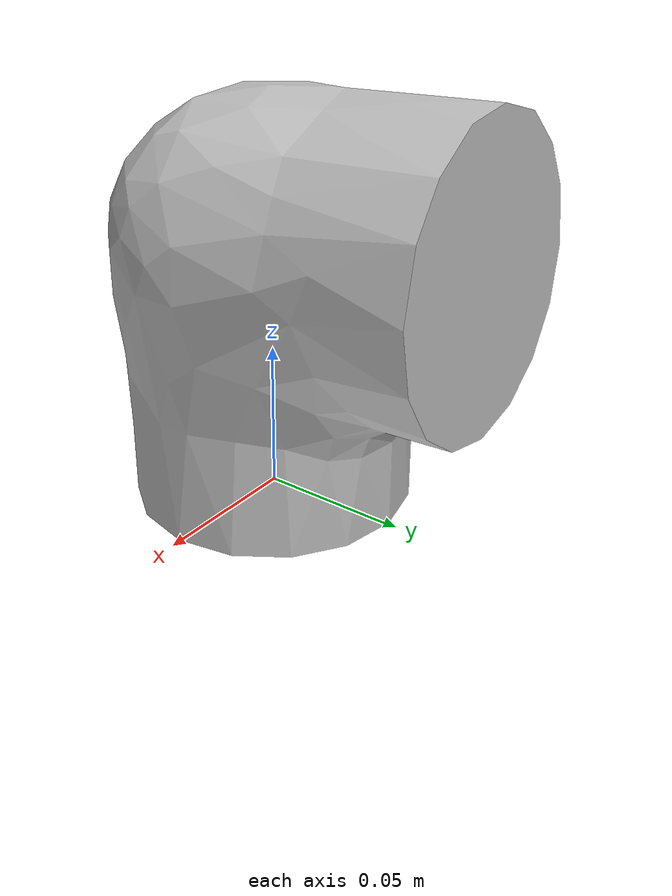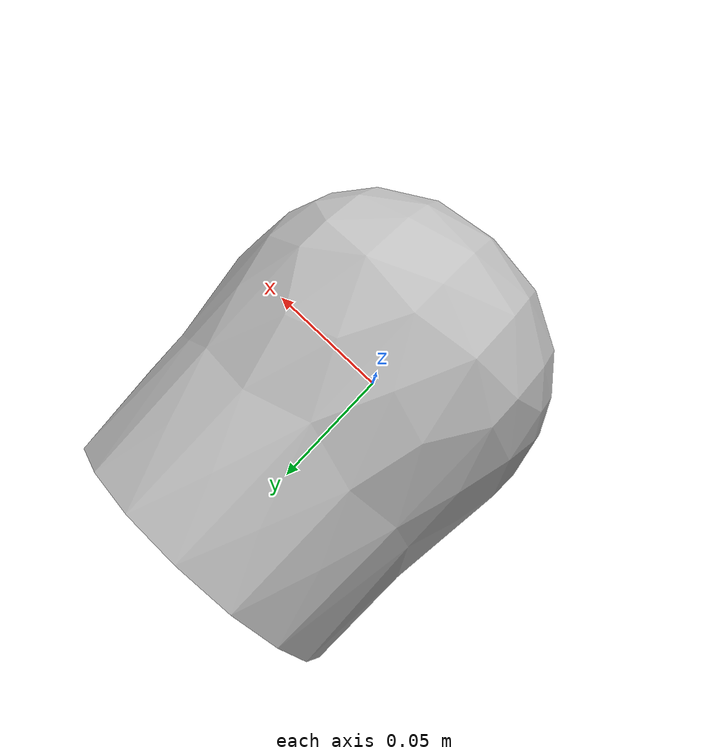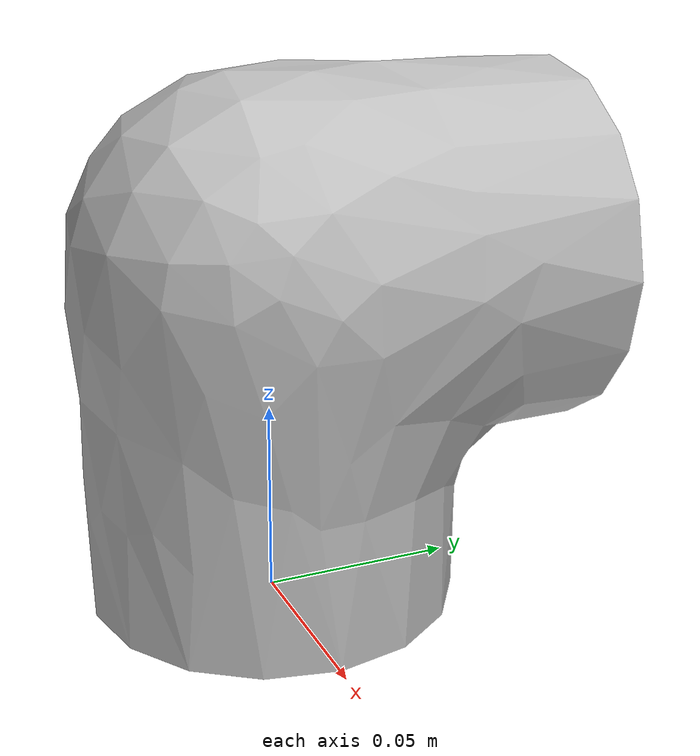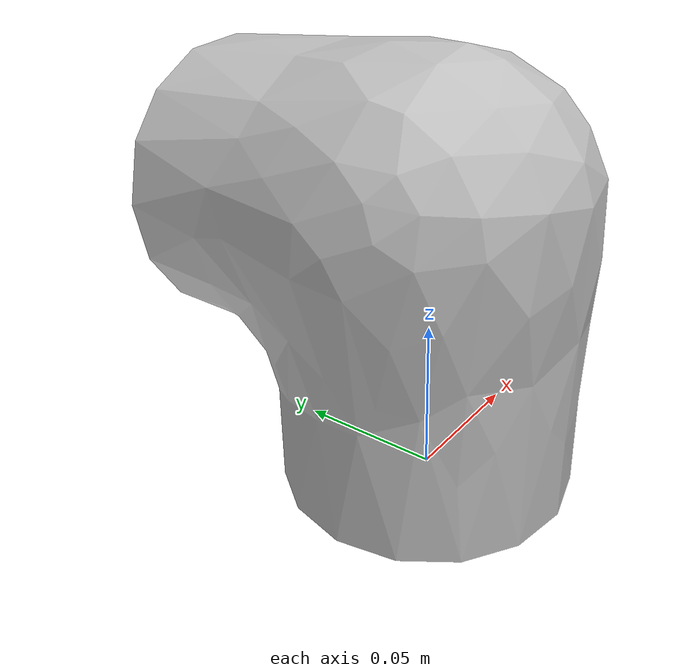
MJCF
<mujoco model="J4">
  <default>
    <default class="visual">
      <geom group="2" type="mesh" contype="0" conaffinity="0"/>
    </default>
    <default class="collision">
      <geom group="3" type="mesh"/>
    </default>
  </default>
  <asset>
    <material name="material_m4_0" specular="0.20000000000000004" shininess="1.0" rgba="0.75294118 0.75294118 0.75294118 1.0"/>
    <mesh file="J4.obj"/>
  </asset>
  <worldbody>
    <body name="J4">
      <geom material="material_m4_0" mesh="J4" class="visual"/>
      <geom mesh="J4" class="collision"/>
    </body>
  </worldbody>
</mujoco>
